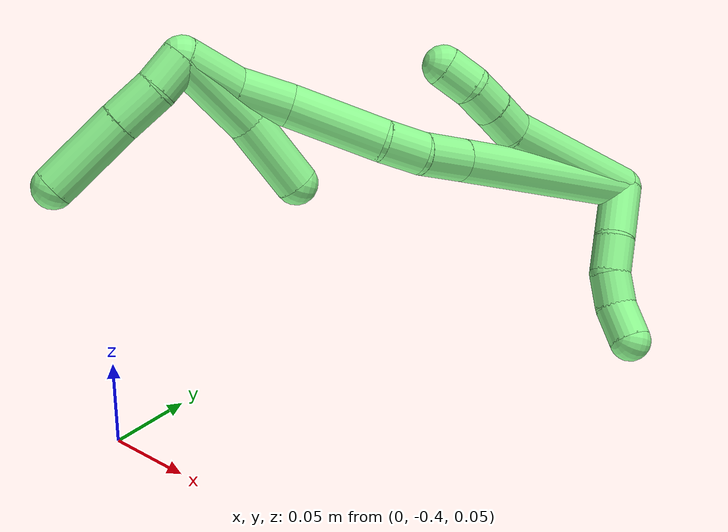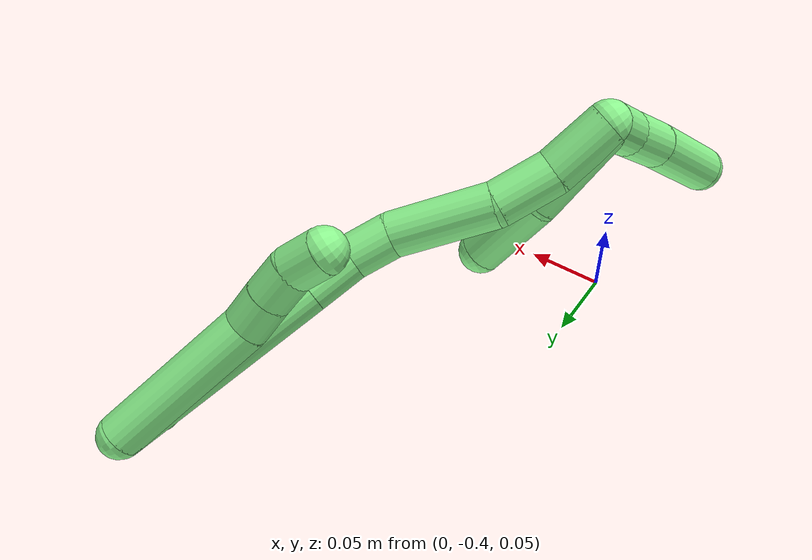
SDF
<sdf version="1.7">
 <world name="default">
  <model name="13">
   <static>0</static>
   <link name="13">
    <collision name="collision-cylinder-e_1_2_8">
     <pose>0.004593 0.005814 0.043803 -0.131956 0.103569 -0.006849</pose>
     <geometry><cylinder><radius>0.0125</radius><length>0.088851</length></cylinder></geometry>
     <surface>
      <friction><ode><mu>1.16</mu><mu2>1.16</mu2><slip1>0</slip1><slip2>0</slip2></ode></friction>
      <contact><ode><kp>1e+06</kp><kd>1</kd><max_vel>0</max_vel><min_depth>0.001</min_depth></ode></contact>
     </surface>
    </collision>
    <visual name="visual-cylinder-e_1_2_8">
     <pose>0.004593 0.005814 0.043803 -0.131956 0.103569 -0.006849</pose>
     <geometry><cylinder><radius>0.0125</radius><length>0.088851</length></cylinder></geometry>
     <material><ambient>0.564706 0.984314 0.572549 1</ambient></material>
    </visual>
    <collision name="collision-cylinder-e_2_8_9">
     <pose>0.011638 0.015541 0.096999 -0.394769 0.236539 -0.047518</pose>
     <geometry><cylinder><radius>0.0125</radius><length>0.020933</length></cylinder></geometry>
     <surface>
      <friction><ode><mu>1.16</mu><mu2>1.16</mu2><slip1>0</slip1><slip2>0</slip2></ode></friction>
      <contact><ode><kp>1e+06</kp><kd>1</kd><max_vel>0</max_vel><min_depth>0.001</min_depth></ode></contact>
     </surface>
    </collision>
    <visual name="visual-cylinder-e_2_8_9">
     <pose>0.011638 0.015541 0.096999 -0.394769 0.236539 -0.047518</pose>
     <geometry><cylinder><radius>0.0125</radius><length>0.020933</length></cylinder></geometry>
     <material><ambient>0.564706 0.984314 0.572549 1</ambient></material>
    </visual>
    <collision name="collision-cylinder-e_3_9_10">
     <pose>0.016087 0.02317 0.115523 -0.386415 0.199758 -0.039208</pose>
     <geometry><cylinder><radius>0.0125</radius><length>0.020116</length></cylinder></geometry>
     <surface>
      <friction><ode><mu>1.16</mu><mu2>1.16</mu2><slip1>0</slip1><slip2>0</slip2></ode></friction>
      <contact><ode><kp>1e+06</kp><kd>1</kd><max_vel>0</max_vel><min_depth>0.001</min_depth></ode></contact>
     </surface>
    </collision>
    <visual name="visual-cylinder-e_3_9_10">
     <pose>0.016087 0.02317 0.115523 -0.386415 0.199758 -0.039208</pose>
     <geometry><cylinder><radius>0.0125</radius><length>0.020116</length></cylinder></geometry>
     <material><ambient>0.564706 0.984314 0.572549 1</ambient></material>
    </visual>
    <collision name="collision-cylinder-e_4_10_6">
     <pose>0.016928 0.030844 0.133819 -0.407769 -0.115178 0.023839</pose>
     <geometry><cylinder><radius>0.0125</radius><length>0.0201</length></cylinder></geometry>
     <surface>
      <friction><ode><mu>1.16</mu><mu2>1.16</mu2><slip1>0</slip1><slip2>0</slip2></ode></friction>
      <contact><ode><kp>1e+06</kp><kd>1</kd><max_vel>0</max_vel><min_depth>0.001</min_depth></ode></contact>
     </surface>
    </collision>
    <visual name="visual-cylinder-e_4_10_6">
     <pose>0.016928 0.030844 0.133819 -0.407769 -0.115178 0.023839</pose>
     <geometry><cylinder><radius>0.0125</radius><length>0.0201</length></cylinder></geometry>
     <material><ambient>0.564706 0.984314 0.572549 1</ambient></material>
    </visual>
    <collision name="collision-cylinder-e_1_2_11">
     <pose>0.002085 -0.017125 0.002193 1.44341 0.12019 0.105807</pose>
     <geometry><cylinder><radius>0.0125</radius><length>0.034781</length></cylinder></geometry>
     <surface>
      <friction><ode><mu>1.16</mu><mu2>1.16</mu2><slip1>0</slip1><slip2>0</slip2></ode></friction>
      <contact><ode><kp>1e+06</kp><kd>1</kd><max_vel>0</max_vel><min_depth>0.001</min_depth></ode></contact>
     </surface>
    </collision>
    <visual name="visual-cylinder-e_1_2_11">
     <pose>0.002085 -0.017125 0.002193 1.44341 0.12019 0.105807</pose>
     <geometry><cylinder><radius>0.0125</radius><length>0.034781</length></cylinder></geometry>
     <material><ambient>0.564706 0.984314 0.572549 1</ambient></material>
    </visual>
    <collision name="collision-cylinder-e_2_11_12">
     <pose>0.003887 -0.045304 0.004661 1.54601 -0.025611 -0.024984</pose>
     <geometry><cylinder><radius>0.0125</radius><length>0.022121</length></cylinder></geometry>
     <surface>
      <friction><ode><mu>1.16</mu><mu2>1.16</mu2><slip1>0</slip1><slip2>0</slip2></ode></friction>
      <contact><ode><kp>1e+06</kp><kd>1</kd><max_vel>0</max_vel><min_depth>0.001</min_depth></ode></contact>
     </surface>
    </collision>
    <visual name="visual-cylinder-e_2_11_12">
     <pose>0.003887 -0.045304 0.004661 1.54601 -0.025611 -0.024984</pose>
     <geometry><cylinder><radius>0.0125</radius><length>0.022121</length></cylinder></geometry>
     <material><ambient>0.564706 0.984314 0.572549 1</ambient></material>
    </visual>
    <collision name="collision-cylinder-e_3_12_13">
     <pose>0.004236 -0.066148 0.002157 1.84727 0.061989 0.082006</pose>
     <geometry><cylinder><radius>0.0125</radius><length>0.020394</length></cylinder></geometry>
     <surface>
      <friction><ode><mu>1.16</mu><mu2>1.16</mu2><slip1>0</slip1><slip2>0</slip2></ode></friction>
      <contact><ode><kp>1e+06</kp><kd>1</kd><max_vel>0</max_vel><min_depth>0.001</min_depth></ode></contact>
     </surface>
    </collision>
    <visual name="visual-cylinder-e_3_12_13">
     <pose>0.004236 -0.066148 0.002157 1.84727 0.061989 0.082006</pose>
     <geometry><cylinder><radius>0.0125</radius><length>0.020394</length></cylinder></geometry>
     <material><ambient>0.564706 0.984314 0.572549 1</ambient></material>
    </visual>
    <collision name="collision-cylinder-e_4_13_5">
     <pose>0.008574 -0.086066 -0.004168 1.90765 0.332589 0.464689</pose>
     <geometry><cylinder><radius>0.0125</radius><length>0.022704</length></cylinder></geometry>
     <surface>
      <friction><ode><mu>1.16</mu><mu2>1.16</mu2><slip1>0</slip1><slip2>0</slip2></ode></friction>
      <contact><ode><kp>1e+06</kp><kd>1</kd><max_vel>0</max_vel><min_depth>0.001</min_depth></ode></contact>
     </surface>
    </collision>
    <visual name="visual-cylinder-e_4_13_5">
     <pose>0.008574 -0.086066 -0.004168 1.90765 0.332589 0.464689</pose>
     <geometry><cylinder><radius>0.0125</radius><length>0.022704</length></cylinder></geometry>
     <material><ambient>0.564706 0.984314 0.572549 1</ambient></material>
    </visual>
    <collision name="collision-cylinder-e_1_2_14">
     <pose>0.004332 -0.007312 0.059981 0.121306 0.071563 0.004348</pose>
     <geometry><cylinder><radius>0.0125</radius><length>0.12116</length></cylinder></geometry>
     <surface>
      <friction><ode><mu>1.16</mu><mu2>1.16</mu2><slip1>0</slip1><slip2>0</slip2></ode></friction>
      <contact><ode><kp>1e+06</kp><kd>1</kd><max_vel>0</max_vel><min_depth>0.001</min_depth></ode></contact>
     </surface>
    </collision>
    <visual name="visual-cylinder-e_1_2_14">
     <pose>0.004332 -0.007312 0.059981 0.121306 0.071563 0.004348</pose>
     <geometry><cylinder><radius>0.0125</radius><length>0.12116</length></cylinder></geometry>
     <material><ambient>0.564706 0.984314 0.572549 1</ambient></material>
    </visual>
    <collision name="collision-cylinder-e_2_14_15">
     <pose>0.009767 -0.016449 0.133947 0.129786 0.078073 0.005076</pose>
     <geometry><cylinder><radius>0.0125</radius><length>0.028294</length></cylinder></geometry>
     <surface>
      <friction><ode><mu>1.16</mu><mu2>1.16</mu2><slip1>0</slip1><slip2>0</slip2></ode></friction>
      <contact><ode><kp>1e+06</kp><kd>1</kd><max_vel>0</max_vel><min_depth>0.001</min_depth></ode></contact>
     </surface>
    </collision>
    <visual name="visual-cylinder-e_2_14_15">
     <pose>0.009767 -0.016449 0.133947 0.129786 0.078073 0.005076</pose>
     <geometry><cylinder><radius>0.0125</radius><length>0.028294</length></cylinder></geometry>
     <material><ambient>0.564706 0.984314 0.572549 1</ambient></material>
    </visual>
    <collision name="collision-cylinder-e_3_15_16">
     <pose>0.009667 -0.017381 0.160145 -0.073074 -0.097919 0.003582</pose>
     <geometry><cylinder><radius>0.0125</radius><length>0.024609</length></cylinder></geometry>
     <surface>
      <friction><ode><mu>1.16</mu><mu2>1.16</mu2><slip1>0</slip1><slip2>0</slip2></ode></friction>
      <contact><ode><kp>1e+06</kp><kd>1</kd><max_vel>0</max_vel><min_depth>0.001</min_depth></ode></contact>
     </surface>
    </collision>
    <visual name="visual-cylinder-e_3_15_16">
     <pose>0.009667 -0.017381 0.160145 -0.073074 -0.097919 0.003582</pose>
     <geometry><cylinder><radius>0.0125</radius><length>0.024609</length></cylinder></geometry>
     <material><ambient>0.564706 0.984314 0.572549 1</ambient></material>
    </visual>
    <collision name="collision-cylinder-e_4_16_17">
     <pose>-0.000539 -0.010844 0.198826 -0.210031 -0.321167 0.034143</pose>
     <geometry><cylinder><radius>0.0125</radius><length>0.057042</length></cylinder></geometry>
     <surface>
      <friction><ode><mu>1.16</mu><mu2>1.16</mu2><slip1>0</slip1><slip2>0</slip2></ode></friction>
      <contact><ode><kp>1e+06</kp><kd>1</kd><max_vel>0</max_vel><min_depth>0.001</min_depth></ode></contact>
     </surface>
    </collision>
    <visual name="visual-cylinder-e_4_16_17">
     <pose>-0.000539 -0.010844 0.198826 -0.210031 -0.321167 0.034143</pose>
     <geometry><cylinder><radius>0.0125</radius><length>0.057042</length></cylinder></geometry>
     <material><ambient>0.564706 0.984314 0.572549 1</ambient></material>
    </visual>
    <collision name="collision-cylinder-e_5_17_18">
     <pose>-0.010888 -0.004252 0.241825 -0.057402 -0.081044 0.002328</pose>
     <geometry><cylinder><radius>0.0125</radius><length>0.033226</length></cylinder></geometry>
     <surface>
      <friction><ode><mu>1.16</mu><mu2>1.16</mu2><slip1>0</slip1><slip2>0</slip2></ode></friction>
      <contact><ode><kp>1e+06</kp><kd>1</kd><max_vel>0</max_vel><min_depth>0.001</min_depth></ode></contact>
     </surface>
    </collision>
    <visual name="visual-cylinder-e_5_17_18">
     <pose>-0.010888 -0.004252 0.241825 -0.057402 -0.081044 0.002328</pose>
     <geometry><cylinder><radius>0.0125</radius><length>0.033226</length></cylinder></geometry>
     <material><ambient>0.564706 0.984314 0.572549 1</ambient></material>
    </visual>
    <collision name="collision-cylinder-e_6_18_1">
     <pose>-0.01016 0.000195 0.275722 -0.198699 0.116445 -0.01162</pose>
     <geometry><cylinder><radius>0.0125</radius><length>0.035669</length></cylinder></geometry>
     <surface>
      <friction><ode><mu>1.16</mu><mu2>1.16</mu2><slip1>0</slip1><slip2>0</slip2></ode></friction>
      <contact><ode><kp>1e+06</kp><kd>1</kd><max_vel>0</max_vel><min_depth>0.001</min_depth></ode></contact>
     </surface>
    </collision>
    <visual name="visual-cylinder-e_6_18_1">
     <pose>-0.01016 0.000195 0.275722 -0.198699 0.116445 -0.01162</pose>
     <geometry><cylinder><radius>0.0125</radius><length>0.035669</length></cylinder></geometry>
     <material><ambient>0.564706 0.984314 0.572549 1</ambient></material>
    </visual>
    <collision name="collision-cylinder-e_1_1_19">
     <pose>-0.013798 -0.007108 0.268654 2.7254 -0.210584 -0.928104</pose>
     <geometry><cylinder><radius>0.0125</radius><length>0.054632</length></cylinder></geometry>
     <surface>
      <friction><ode><mu>1.16</mu><mu2>1.16</mu2><slip1>0</slip1><slip2>0</slip2></ode></friction>
      <contact><ode><kp>1e+06</kp><kd>1</kd><max_vel>0</max_vel><min_depth>0.001</min_depth></ode></contact>
     </surface>
    </collision>
    <visual name="visual-cylinder-e_1_1_19">
     <pose>-0.013798 -0.007108 0.268654 2.7254 -0.210584 -0.928104</pose>
     <geometry><cylinder><radius>0.0125</radius><length>0.054632</length></cylinder></geometry>
     <material><ambient>0.564706 0.984314 0.572549 1</ambient></material>
    </visual>
    <collision name="collision-cylinder-e_2_19_4">
     <pose>-0.021742 -0.030869 0.22574 2.52999 -0.09864 -0.310189</pose>
     <geometry><cylinder><radius>0.0125</radius><length>0.045368</length></cylinder></geometry>
     <surface>
      <friction><ode><mu>1.16</mu><mu2>1.16</mu2><slip1>0</slip1><slip2>0</slip2></ode></friction>
      <contact><ode><kp>1e+06</kp><kd>1</kd><max_vel>0</max_vel><min_depth>0.001</min_depth></ode></contact>
     </surface>
    </collision>
    <visual name="visual-cylinder-e_2_19_4">
     <pose>-0.021742 -0.030869 0.22574 2.52999 -0.09864 -0.310189</pose>
     <geometry><cylinder><radius>0.0125</radius><length>0.045368</length></cylinder></geometry>
     <material><ambient>0.564706 0.984314 0.572549 1</ambient></material>
    </visual>
    <collision name="collision-cylinder-e_1_1_20">
     <pose>-0.012036 -0.005619 0.297661 1.11409 -0.36366 -0.228038</pose>
     <geometry><cylinder><radius>0.0125</radius><length>0.022198</length></cylinder></geometry>
     <surface>
      <friction><ode><mu>1.16</mu><mu2>1.16</mu2><slip1>0</slip1><slip2>0</slip2></ode></friction>
      <contact><ode><kp>1e+06</kp><kd>1</kd><max_vel>0</max_vel><min_depth>0.001</min_depth></ode></contact>
     </surface>
    </collision>
    <visual name="visual-cylinder-e_1_1_20">
     <pose>-0.012036 -0.005619 0.297661 1.11409 -0.36366 -0.228038</pose>
     <geometry><cylinder><radius>0.0125</radius><length>0.022198</length></cylinder></geometry>
     <material><ambient>0.564706 0.984314 0.572549 1</ambient></material>
    </visual>
    <collision name="collision-cylinder-e_2_20_21">
     <pose>-0.022549 -0.024796 0.308789 0.984564 -0.506059 -0.275598</pose>
     <geometry><cylinder><radius>0.0125</radius><length>0.027086</length></cylinder></geometry>
     <surface>
      <friction><ode><mu>1.16</mu><mu2>1.16</mu2><slip1>0</slip1><slip2>0</slip2></ode></friction>
      <contact><ode><kp>1e+06</kp><kd>1</kd><max_vel>0</max_vel><min_depth>0.001</min_depth></ode></contact>
     </surface>
    </collision>
    <visual name="visual-cylinder-e_2_20_21">
     <pose>-0.022549 -0.024796 0.308789 0.984564 -0.506059 -0.275598</pose>
     <geometry><cylinder><radius>0.0125</radius><length>0.027086</length></cylinder></geometry>
     <material><ambient>0.564706 0.984314 0.572549 1</ambient></material>
    </visual>
    <collision name="collision-cylinder-e_3_21_3">
     <pose>-0.041834 -0.053496 0.326593 1.03228 -0.525465 -0.302891</pose>
     <geometry><cylinder><radius>0.0125</radius><length>0.050716</length></cylinder></geometry>
     <surface>
      <friction><ode><mu>1.16</mu><mu2>1.16</mu2><slip1>0</slip1><slip2>0</slip2></ode></friction>
      <contact><ode><kp>1e+06</kp><kd>1</kd><max_vel>0</max_vel><min_depth>0.001</min_depth></ode></contact>
     </surface>
    </collision>
    <visual name="visual-cylinder-e_3_21_3">
     <pose>-0.041834 -0.053496 0.326593 1.03228 -0.525465 -0.302891</pose>
     <geometry><cylinder><radius>0.0125</radius><length>0.050716</length></cylinder></geometry>
     <material><ambient>0.564706 0.984314 0.572549 1</ambient></material>
    </visual>
    <collision name="collision-sphere-3">
     <pose>-0.054554 -0.072329 0.337844 0 -0 0</pose>
     <geometry><sphere><radius>0.0125</radius></sphere></geometry>
     <surface>
      <friction><ode><mu>1.16</mu><mu2>1.16</mu2><slip1>0</slip1><slip2>0</slip2></ode></friction>
      <contact><ode><kp>1e+06</kp><kd>1</kd><max_vel>0</max_vel><min_depth>0.001</min_depth></ode></contact>
     </surface>
    </collision>
    <visual name="visual-sphere-3">
     <pose>-0.054554 -0.072329 0.337844 0 -0 0</pose>
     <geometry><sphere><radius>0.0125</radius></sphere></geometry>
     <material><ambient>0.564706 0.984314 0.572549 1</ambient></material>
    </visual>
    <collision name="collision-sphere-21">
     <pose>-0.029113 -0.034664 0.315342 0 -0 0</pose>
     <geometry><sphere><radius>0.0125</radius></sphere></geometry>
     <surface>
      <friction><ode><mu>1.16</mu><mu2>1.16</mu2><slip1>0</slip1><slip2>0</slip2></ode></friction>
      <contact><ode><kp>1e+06</kp><kd>1</kd><max_vel>0</max_vel><min_depth>0.001</min_depth></ode></contact>
     </surface>
    </collision>
    <visual name="visual-sphere-21">
     <pose>-0.029113 -0.034664 0.315342 0 -0 0</pose>
     <geometry><sphere><radius>0.0125</radius></sphere></geometry>
     <material><ambient>0.564706 0.984314 0.572549 1</ambient></material>
    </visual>
    <collision name="collision-sphere-20">
     <pose>-0.015984 -0.014928 0.302236 0 -0 0</pose>
     <geometry><sphere><radius>0.0125</radius></sphere></geometry>
     <surface>
      <friction><ode><mu>1.16</mu><mu2>1.16</mu2><slip1>0</slip1><slip2>0</slip2></ode></friction>
      <contact><ode><kp>1e+06</kp><kd>1</kd><max_vel>0</max_vel><min_depth>0.001</min_depth></ode></contact>
     </surface>
    </collision>
    <visual name="visual-sphere-20">
     <pose>-0.015984 -0.014928 0.302236 0 -0 0</pose>
     <geometry><sphere><radius>0.0125</radius></sphere></geometry>
     <material><ambient>0.564706 0.984314 0.572549 1</ambient></material>
    </visual>
    <collision name="collision-sphere-4">
     <pose>-0.023976 -0.04383 0.207259 0 -0 0</pose>
     <geometry><sphere><radius>0.0125</radius></sphere></geometry>
     <surface>
      <friction><ode><mu>1.16</mu><mu2>1.16</mu2><slip1>0</slip1><slip2>0</slip2></ode></friction>
      <contact><ode><kp>1e+06</kp><kd>1</kd><max_vel>0</max_vel><min_depth>0.001</min_depth></ode></contact>
     </surface>
    </collision>
    <visual name="visual-sphere-4">
     <pose>-0.023976 -0.04383 0.207259 0 -0 0</pose>
     <geometry><sphere><radius>0.0125</radius></sphere></geometry>
     <material><ambient>0.564706 0.984314 0.572549 1</ambient></material>
    </visual>
    <collision name="collision-sphere-11">
     <pose>0.00417 -0.034251 0.004387 0 -0 0</pose>
     <geometry><sphere><radius>0.0125</radius></sphere></geometry>
     <surface>
      <friction><ode><mu>1.16</mu><mu2>1.16</mu2><slip1>0</slip1><slip2>0</slip2></ode></friction>
      <contact><ode><kp>1e+06</kp><kd>1</kd><max_vel>0</max_vel><min_depth>0.001</min_depth></ode></contact>
     </surface>
    </collision>
    <visual name="visual-sphere-11">
     <pose>0.00417 -0.034251 0.004387 0 -0 0</pose>
     <geometry><sphere><radius>0.0125</radius></sphere></geometry>
     <material><ambient>0.564706 0.984314 0.572549 1</ambient></material>
    </visual>
    <collision name="collision-sphere-6">
     <pose>0.015773 0.034803 0.142983 0 -0 0</pose>
     <geometry><sphere><radius>0.0125</radius></sphere></geometry>
     <surface>
      <friction><ode><mu>1.16</mu><mu2>1.16</mu2><slip1>0</slip1><slip2>0</slip2></ode></friction>
      <contact><ode><kp>1e+06</kp><kd>1</kd><max_vel>0</max_vel><min_depth>0.001</min_depth></ode></contact>
     </surface>
    </collision>
    <visual name="visual-sphere-6">
     <pose>0.015773 0.034803 0.142983 0 -0 0</pose>
     <geometry><sphere><radius>0.0125</radius></sphere></geometry>
     <material><ambient>0.564706 0.984314 0.572549 1</ambient></material>
    </visual>
    <collision name="collision-sphere-10">
     <pose>0.018083 0.026885 0.124654 0 -0 0</pose>
     <geometry><sphere><radius>0.0125</radius></sphere></geometry>
     <surface>
      <friction><ode><mu>1.16</mu><mu2>1.16</mu2><slip1>0</slip1><slip2>0</slip2></ode></friction>
      <contact><ode><kp>1e+06</kp><kd>1</kd><max_vel>0</max_vel><min_depth>0.001</min_depth></ode></contact>
     </surface>
    </collision>
    <visual name="visual-sphere-10">
     <pose>0.018083 0.026885 0.124654 0 -0 0</pose>
     <geometry><sphere><radius>0.0125</radius></sphere></geometry>
     <material><ambient>0.564706 0.984314 0.572549 1</ambient></material>
    </visual>
    <collision name="collision-sphere-9">
     <pose>0.014091 0.019454 0.106392 0 -0 0</pose>
     <geometry><sphere><radius>0.0125</radius></sphere></geometry>
     <surface>
      <friction><ode><mu>1.16</mu><mu2>1.16</mu2><slip1>0</slip1><slip2>0</slip2></ode></friction>
      <contact><ode><kp>1e+06</kp><kd>1</kd><max_vel>0</max_vel><min_depth>0.001</min_depth></ode></contact>
     </surface>
    </collision>
    <visual name="visual-sphere-9">
     <pose>0.014091 0.019454 0.106392 0 -0 0</pose>
     <geometry><sphere><radius>0.0125</radius></sphere></geometry>
     <material><ambient>0.564706 0.984314 0.572549 1</ambient></material>
    </visual>
    <collision name="collision-sphere-2">
     <geometry><sphere><radius>0.0125</radius></sphere></geometry>
     <surface>
      <friction><ode><mu>1.16</mu><mu2>1.16</mu2><slip1>0</slip1><slip2>0</slip2></ode></friction>
      <contact><ode><kp>1e+06</kp><kd>1</kd><max_vel>0</max_vel><min_depth>0.001</min_depth></ode></contact>
     </surface>
    </collision>
    <visual name="visual-sphere-2">
     <geometry><sphere><radius>0.0125</radius></sphere></geometry>
     <material><ambient>0.564706 0.984314 0.572549 1</ambient></material>
    </visual>
    <collision name="collision-sphere-19">
     <pose>-0.019508 -0.017908 0.244222 0 -0 0</pose>
     <geometry><sphere><radius>0.0125</radius></sphere></geometry>
     <surface>
      <friction><ode><mu>1.16</mu><mu2>1.16</mu2><slip1>0</slip1><slip2>0</slip2></ode></friction>
      <contact><ode><kp>1e+06</kp><kd>1</kd><max_vel>0</max_vel><min_depth>0.001</min_depth></ode></contact>
     </surface>
    </collision>
    <visual name="visual-sphere-19">
     <pose>-0.019508 -0.017908 0.244222 0 -0 0</pose>
     <geometry><sphere><radius>0.0125</radius></sphere></geometry>
     <material><ambient>0.564706 0.984314 0.572549 1</ambient></material>
    </visual>
    <collision name="collision-sphere-8">
     <pose>0.009186 0.011628 0.087607 0 -0 0</pose>
     <geometry><sphere><radius>0.0125</radius></sphere></geometry>
     <surface>
      <friction><ode><mu>1.16</mu><mu2>1.16</mu2><slip1>0</slip1><slip2>0</slip2></ode></friction>
      <contact><ode><kp>1e+06</kp><kd>1</kd><max_vel>0</max_vel><min_depth>0.001</min_depth></ode></contact>
     </surface>
    </collision>
    <visual name="visual-sphere-8">
     <pose>0.009186 0.011628 0.087607 0 -0 0</pose>
     <geometry><sphere><radius>0.0125</radius></sphere></geometry>
     <material><ambient>0.564706 0.984314 0.572549 1</ambient></material>
    </visual>
    <collision name="collision-sphere-12">
     <pose>0.003604 -0.056357 0.004935 0 -0 0</pose>
     <geometry><sphere><radius>0.0125</radius></sphere></geometry>
     <surface>
      <friction><ode><mu>1.16</mu><mu2>1.16</mu2><slip1>0</slip1><slip2>0</slip2></ode></friction>
      <contact><ode><kp>1e+06</kp><kd>1</kd><max_vel>0</max_vel><min_depth>0.001</min_depth></ode></contact>
     </surface>
    </collision>
    <visual name="visual-sphere-12">
     <pose>0.003604 -0.056357 0.004935 0 -0 0</pose>
     <geometry><sphere><radius>0.0125</radius></sphere></geometry>
     <material><ambient>0.564706 0.984314 0.572549 1</ambient></material>
    </visual>
    <collision name="collision-sphere-13">
     <pose>0.004867 -0.075939 -0.000621 0 -0 0</pose>
     <geometry><sphere><radius>0.0125</radius></sphere></geometry>
     <surface>
      <friction><ode><mu>1.16</mu><mu2>1.16</mu2><slip1>0</slip1><slip2>0</slip2></ode></friction>
      <contact><ode><kp>1e+06</kp><kd>1</kd><max_vel>0</max_vel><min_depth>0.001</min_depth></ode></contact>
     </surface>
    </collision>
    <visual name="visual-sphere-13">
     <pose>0.004867 -0.075939 -0.000621 0 -0 0</pose>
     <geometry><sphere><radius>0.0125</radius></sphere></geometry>
     <material><ambient>0.564706 0.984314 0.572549 1</ambient></material>
    </visual>
    <collision name="collision-sphere-5">
     <pose>0.01228 -0.096193 -0.007714 0 -0 0</pose>
     <geometry><sphere><radius>0.0125</radius></sphere></geometry>
     <surface>
      <friction><ode><mu>1.16</mu><mu2>1.16</mu2><slip1>0</slip1><slip2>0</slip2></ode></friction>
      <contact><ode><kp>1e+06</kp><kd>1</kd><max_vel>0</max_vel><min_depth>0.001</min_depth></ode></contact>
     </surface>
    </collision>
    <visual name="visual-sphere-5">
     <pose>0.01228 -0.096193 -0.007714 0 -0 0</pose>
     <geometry><sphere><radius>0.0125</radius></sphere></geometry>
     <material><ambient>0.564706 0.984314 0.572549 1</ambient></material>
    </visual>
    <collision name="collision-sphere-14">
     <pose>0.008663 -0.014624 0.119962 0 -0 0</pose>
     <geometry><sphere><radius>0.0125</radius></sphere></geometry>
     <surface>
      <friction><ode><mu>1.16</mu><mu2>1.16</mu2><slip1>0</slip1><slip2>0</slip2></ode></friction>
      <contact><ode><kp>1e+06</kp><kd>1</kd><max_vel>0</max_vel><min_depth>0.001</min_depth></ode></contact>
     </surface>
    </collision>
    <visual name="visual-sphere-14">
     <pose>0.008663 -0.014624 0.119962 0 -0 0</pose>
     <geometry><sphere><radius>0.0125</radius></sphere></geometry>
     <material><ambient>0.564706 0.984314 0.572549 1</ambient></material>
    </visual>
    <collision name="collision-sphere-15">
     <pose>0.01087 -0.018275 0.147932 0 -0 0</pose>
     <geometry><sphere><radius>0.0125</radius></sphere></geometry>
     <surface>
      <friction><ode><mu>1.16</mu><mu2>1.16</mu2><slip1>0</slip1><slip2>0</slip2></ode></friction>
      <contact><ode><kp>1e+06</kp><kd>1</kd><max_vel>0</max_vel><min_depth>0.001</min_depth></ode></contact>
     </surface>
    </collision>
    <visual name="visual-sphere-15">
     <pose>0.01087 -0.018275 0.147932 0 -0 0</pose>
     <geometry><sphere><radius>0.0125</radius></sphere></geometry>
     <material><ambient>0.564706 0.984314 0.572549 1</ambient></material>
    </visual>
    <collision name="collision-sphere-16">
     <pose>0.008464 -0.016486 0.172358 0 -0 0</pose>
     <geometry><sphere><radius>0.0125</radius></sphere></geometry>
     <surface>
      <friction><ode><mu>1.16</mu><mu2>1.16</mu2><slip1>0</slip1><slip2>0</slip2></ode></friction>
      <contact><ode><kp>1e+06</kp><kd>1</kd><max_vel>0</max_vel><min_depth>0.001</min_depth></ode></contact>
     </surface>
    </collision>
    <visual name="visual-sphere-16">
     <pose>0.008464 -0.016486 0.172358 0 -0 0</pose>
     <geometry><sphere><radius>0.0125</radius></sphere></geometry>
     <material><ambient>0.564706 0.984314 0.572549 1</ambient></material>
    </visual>
    <collision name="collision-sphere-17">
     <pose>-0.009543 -0.005202 0.225294 0 -0 0</pose>
     <geometry><sphere><radius>0.0125</radius></sphere></geometry>
     <surface>
      <friction><ode><mu>1.16</mu><mu2>1.16</mu2><slip1>0</slip1><slip2>0</slip2></ode></friction>
      <contact><ode><kp>1e+06</kp><kd>1</kd><max_vel>0</max_vel><min_depth>0.001</min_depth></ode></contact>
     </surface>
    </collision>
    <visual name="visual-sphere-17">
     <pose>-0.009543 -0.005202 0.225294 0 -0 0</pose>
     <geometry><sphere><radius>0.0125</radius></sphere></geometry>
     <material><ambient>0.564706 0.984314 0.572549 1</ambient></material>
    </visual>
    <collision name="collision-sphere-18">
     <pose>-0.012232 -0.003302 0.258357 0 -0 0</pose>
     <geometry><sphere><radius>0.0125</radius></sphere></geometry>
     <surface>
      <friction><ode><mu>1.16</mu><mu2>1.16</mu2><slip1>0</slip1><slip2>0</slip2></ode></friction>
      <contact><ode><kp>1e+06</kp><kd>1</kd><max_vel>0</max_vel><min_depth>0.001</min_depth></ode></contact>
     </surface>
    </collision>
    <visual name="visual-sphere-18">
     <pose>-0.012232 -0.003302 0.258357 0 -0 0</pose>
     <geometry><sphere><radius>0.0125</radius></sphere></geometry>
     <material><ambient>0.564706 0.984314 0.572549 1</ambient></material>
    </visual>
    <collision name="collision-sphere-1">
     <pose>-0.008088 0.003691 0.293087 0 -0 0</pose>
     <geometry><sphere><radius>0.0125</radius></sphere></geometry>
     <surface>
      <friction><ode><mu>1.16</mu><mu2>1.16</mu2><slip1>0</slip1><slip2>0</slip2></ode></friction>
      <contact><ode><kp>1e+06</kp><kd>1</kd><max_vel>0</max_vel><min_depth>0.001</min_depth></ode></contact>
     </surface>
    </collision>
    <visual name="visual-sphere-1">
     <pose>-0.008088 0.003691 0.293087 0 -0 0</pose>
     <geometry><sphere><radius>0.0125</radius></sphere></geometry>
     <material><ambient>0.564706 0.984314 0.572549 1</ambient></material>
    </visual>
    <inertial>
     <pose>-0.003601 -0.014404 0.14897 0 -0 0</pose>
     <mass>0.75</mass>
     <inertia>
      <ixx>0.000272</ixx>
      <ixy>0</ixy>
      <ixz>0</ixz>
      <iyy>0.000213</iyy>
      <iyz>0</iyz>
      <izz>6.8e-05</izz>
     </inertia>
    </inertial>
   </link>
   <pose>0.1273 -0.092852 0.133252 1.06574 -0.572944 -0.248922</pose>
  </model>
 </world>
</sdf>
